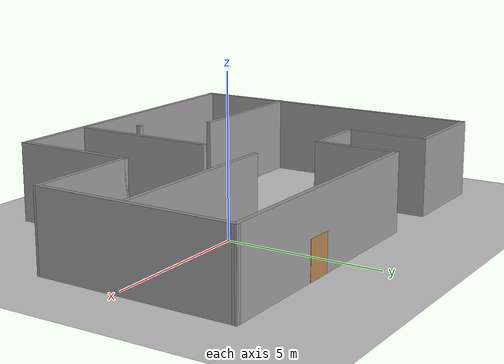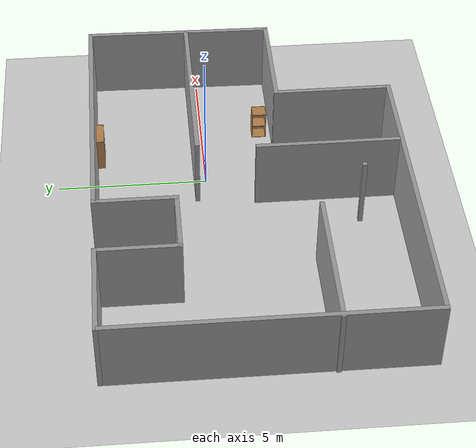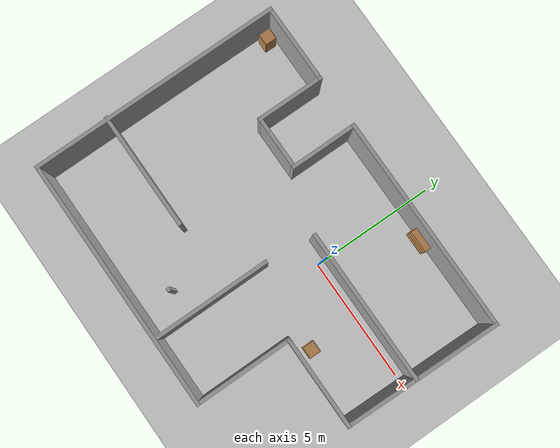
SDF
<sdf version="1.7">
 <world name="default">
  <light name="sun" type="directional">
   <pose>0 0 10 0 -0 0</pose>
   <diffuse>0.8 0.8 0.8 1</diffuse>
   <specular>0.2 0.2 0.2 1</specular>
   <attenuation>
    <range>1000</range>
    <constant>0.9</constant>
    <linear>0.01</linear>
    <quadratic>0.001</quadratic>
   </attenuation>
   <direction>-0.5 0.1 -0.9</direction>
   <spot><inner_angle>0</inner_angle><outer_angle>0</outer_angle><falloff>0</falloff></spot>
  </light>
  <model name="ground_plane">
   <static>1</static>
   <link name="link">
    <collision name="collision">
     <geometry><plane><normal>0 0 1</normal><size>100 100</size></plane></geometry>
     <surface><friction><ode><mu>100</mu><mu2>50</mu2></ode></friction></surface>
    </collision>
    <visual name="visual">
     <cast_shadows>0</cast_shadows>
     <geometry><plane><normal>0 0 1</normal><size>100 100</size></plane></geometry>
     <material>
      <script><uri>file://media/materials/scripts/gazebo.material</uri><name>Gazebo/Grey</name></script>
     </material>
    </visual>
   </link>
  </model>
  <gravity>0 0 -9.8</gravity>
  <magnetic_field>6e-06 2.3e-05 -4.2e-05</magnetic_field>
  <atmosphere type="adiabatic"/>
  <physics type="ode">
   <max_step_size>0.001</max_step_size>
   <real_time_factor>1</real_time_factor>
   <real_time_update_rate>1000</real_time_update_rate>
  </physics>
  <scene><ambient>0.4 0.4 0.4 1</ambient><background>0.7 0.7 0.7 1</background><shadows>1</shadows></scene>
  <audio><device>default</device></audio>
  <spherical_coordinates>
   <surface_model>EARTH_WGS84</surface_model>
   <latitude_deg>0</latitude_deg>
   <longitude_deg>0</longitude_deg>
   <elevation>0</elevation>
   <heading_deg>0</heading_deg>
  </spherical_coordinates>
  <model name="NewMap">
   <pose>-1.64952 -1.32026 0 0 -0 0</pose>
   <link name="Wall_2">
    <collision name="Wall_2_Collision">
     <geometry><box><size>0.15 0.15 2.5</size></box></geometry>
     <pose>0 0 1.25 0 -0 0</pose>
    </collision>
    <visual name="Wall_2_Visual">
     <pose>0 0 1.25 0 -0 0</pose>
     <geometry><box><size>0.15 0.15 2.5</size></box></geometry>
     <material>
      <script><uri>file://media/materials/scripts/gazebo.material</uri><name>Gazebo/Grey</name></script>
      <ambient>1 1 1 1</ambient>
     </material>
     <meta><layer>0</layer></meta>
    </visual>
    <pose>-0.620475 -3.64974 0 0 -0 0</pose>
   </link>
   <link name="Wall_20">
    <collision name="Wall_20_Collision">
     <geometry><box><size>10.25 0.15 2.5</size></box></geometry>
     <pose>0 0 1.25 0 -0 0</pose>
    </collision>
    <visual name="Wall_20_Visual">
     <pose>0 0 1.25 0 -0 0</pose>
     <geometry><box><size>10.25 0.15 2.5</size></box></geometry>
     <material>
      <script><uri>file://media/materials/scripts/gazebo.material</uri><name>Gazebo/Grey</name></script>
      <ambient>1 1 1 1</ambient>
     </material>
     <meta><layer>0</layer></meta>
    </visual>
    <pose>-6.87315 -0.000595 0 0 -0 -1.5708</pose>
   </link>
   <link name="Wall_21">
    <collision name="Wall_21_Collision">
     <geometry><box><size>10.25 0.15 2.5</size></box></geometry>
     <pose>0 0 1.25 0 -0 0</pose>
    </collision>
    <visual name="Wall_21_Visual">
     <pose>0 0 1.25 0 -0 0</pose>
     <geometry><box><size>10.25 0.15 2.5</size></box></geometry>
     <material>
      <script><uri>file://media/materials/scripts/gazebo.material</uri><name>Gazebo/Grey</name></script>
      <ambient>1 1 1 1</ambient>
     </material>
     <meta><layer>0</layer></meta>
    </visual>
    <pose>-1.82315 -5.0506 0 0 -0 0</pose>
   </link>
   <link name="Wall_22">
    <collision name="Wall_22_Collision">
     <geometry><box><size>4 0.15 2.5</size></box></geometry>
     <pose>0 0 1.25 0 -0 0</pose>
    </collision>
    <visual name="Wall_22_Visual">
     <pose>0 0 1.25 0 -0 0</pose>
     <geometry><box><size>4 0.15 2.5</size></box></geometry>
     <material>
      <script><uri>file://media/materials/scripts/gazebo.material</uri><name>Gazebo/Grey</name></script>
      <ambient>1 1 1 1</ambient>
     </material>
     <meta><layer>0</layer></meta>
    </visual>
    <pose>3.22685 -3.1256 0 0 -0 1.5708</pose>
   </link>
   <link name="Wall_23">
    <collision name="Wall_23_Collision">
     <geometry><box><size>3.75 0.15 2.5</size></box></geometry>
     <pose>0 0 1.25 0 -0 0</pose>
    </collision>
    <visual name="Wall_23_Visual">
     <pose>0 0 1.25 0 -0 0</pose>
     <geometry><box><size>3.75 0.15 2.5</size></box></geometry>
     <material>
      <script><uri>file://media/materials/scripts/gazebo.material</uri><name>Gazebo/Grey</name></script>
      <ambient>1 1 1 1</ambient>
     </material>
     <meta><layer>0</layer></meta>
    </visual>
    <pose>5.02685 -1.2006 0 0 -0 0</pose>
   </link>
   <link name="Wall_26">
    <collision name="Wall_26_Collision">
     <geometry><box><size>3.25 0.15 2.5</size></box></geometry>
     <pose>0 0 1.25 0 -0 0</pose>
    </collision>
    <visual name="Wall_26_Visual">
     <pose>0 0 1.25 0 -0 0</pose>
     <geometry><box><size>3.25 0.15 2.5</size></box></geometry>
     <material>
      <script><uri>file://media/materials/scripts/gazebo.material</uri><name>Gazebo/Grey</name></script>
      <ambient>1 1 1 1</ambient>
     </material>
     <meta><layer>0</layer></meta>
    </visual>
    <pose>-5.32315 5.04941 0 0 -0 0</pose>
   </link>
   <link name="Wall_27">
    <collision name="Wall_27_Collision">
     <geometry><box><size>2.75 0.15 2.5</size></box></geometry>
     <pose>0 0 1.25 0 -0 0</pose>
    </collision>
    <visual name="Wall_27_Visual">
     <pose>0 0 1.25 0 -0 0</pose>
     <geometry><box><size>2.75 0.15 2.5</size></box></geometry>
     <material>
      <script><uri>file://media/materials/scripts/gazebo.material</uri><name>Gazebo/Grey</name></script>
      <ambient>1 1 1 1</ambient>
     </material>
     <meta><layer>0</layer></meta>
    </visual>
    <pose>-3.77315 3.7494 0 0 -0 -1.5708</pose>
   </link>
   <link name="Wall_28">
    <collision name="Wall_28_Collision">
     <geometry><box><size>2.25 0.15 2.5</size></box></geometry>
     <pose>0 0 1.25 0 -0 0</pose>
    </collision>
    <visual name="Wall_28_Visual">
     <pose>0 0 1.25 0 -0 0</pose>
     <geometry><box><size>2.25 0.15 2.5</size></box></geometry>
     <material>
      <script><uri>file://media/materials/scripts/gazebo.material</uri><name>Gazebo/Grey</name></script>
      <ambient>1 1 1 1</ambient>
     </material>
     <meta><layer>0</layer></meta>
    </visual>
    <pose>-2.72315 2.44941 0 0 -0 0</pose>
   </link>
   <link name="Wall_29">
    <collision name="Wall_29_Collision">
     <geometry><box><size>2.75 0.15 2.5</size></box></geometry>
     <pose>0 0 1.25 0 -0 0</pose>
    </collision>
    <visual name="Wall_29_Visual">
     <pose>0 0 1.25 0 -0 0</pose>
     <geometry><box><size>2.75 0.15 2.5</size></box></geometry>
     <material>
      <script><uri>file://media/materials/scripts/gazebo.material</uri><name>Gazebo/Grey</name></script>
      <ambient>1 1 1 1</ambient>
     </material>
     <meta><layer>0</layer></meta>
    </visual>
    <pose>-1.67315 3.7494 0 0 -0 1.5708</pose>
   </link>
   <link name="Wall_30">
    <collision name="Wall_30_Collision">
     <geometry><box><size>8.75 0.15 2.5</size></box></geometry>
     <pose>0 0 1.25 0 -0 0</pose>
    </collision>
    <visual name="Wall_30_Visual">
     <pose>0 0 1.25 0 -0 0</pose>
     <geometry><box><size>8.75 0.15 2.5</size></box></geometry>
     <material>
      <script><uri>file://media/materials/scripts/gazebo.material</uri><name>Gazebo/Grey</name></script>
      <ambient>1 1 1 1</ambient>
     </material>
     <meta><layer>0</layer></meta>
    </visual>
    <pose>2.62685 5.04941 0 0 -0 0</pose>
   </link>
   <link name="Wall_31">
    <collision name="Wall_31_Collision">
     <geometry><box><size>6.4008 0.15 2.5</size></box></geometry>
     <pose>0 0 1.25 0 -0 0</pose>
    </collision>
    <visual name="Wall_31_Visual">
     <pose>0 0 1.25 0 -0 0</pose>
     <geometry><box><size>6.4008 0.15 2.5</size></box></geometry>
     <material>
      <script><uri>file://media/materials/scripts/gazebo.material</uri><name>Gazebo/Grey</name></script>
      <ambient>1 1 1 1</ambient>
     </material>
     <meta><layer>0</layer></meta>
    </visual>
    <pose>6.87685 1.9244 0 0 -0 -1.58679</pose>
   </link>
   <link name="Wall_33">
    <collision name="Wall_33_Collision">
     <geometry><box><size>4.75 0.15 2.5</size></box></geometry>
     <pose>0 0 1.25 0 -0 0</pose>
    </collision>
    <visual name="Wall_33_Visual">
     <pose>0 0 1.25 0 -0 0</pose>
     <geometry><box><size>4.75 0.15 2.5</size></box></geometry>
     <material>
      <script><uri>file://media/materials/scripts/gazebo.material</uri><name>Gazebo/Grey</name></script>
      <ambient>1 1 1 1</ambient>
     </material>
     <meta><layer>0</layer></meta>
    </visual>
    <pose>-4.62804 -2.04102 0 0 -0 0</pose>
   </link>
   <link name="Wall_35">
    <collision name="Wall_35_Collision">
     <geometry><box><size>6.25 0.15 2.5</size></box></geometry>
     <pose>0 0 1.25 0 -0 0</pose>
    </collision>
    <visual name="Wall_35_Visual">
     <pose>0 0 1.25 0 -0 0</pose>
     <geometry><box><size>6.25 0.15 2.5</size></box></geometry>
     <material>
      <script><uri>file://media/materials/scripts/gazebo.material</uri><name>Gazebo/Grey</name></script>
      <ambient>1 1 1 1</ambient>
     </material>
     <meta><layer>0</layer></meta>
    </visual>
    <pose>3.81203 1.65275 0 0 -0 3.14159</pose>
   </link>
   <link name="Wall_37">
    <collision name="Wall_37_Collision">
     <geometry><box><size>4.75 0.15 2.5</size></box></geometry>
     <pose>0 0 1.25 0 -0 0</pose>
    </collision>
    <visual name="Wall_37_Visual">
     <pose>0 0 1.25 0 -0 0</pose>
     <geometry><box><size>4.75 0.15 2.5</size></box></geometry>
     <material>
      <script><uri>file://media/materials/scripts/gazebo.material</uri><name>Gazebo/Grey</name></script>
      <ambient>1 1 1 1</ambient>
     </material>
     <meta><layer>0</layer></meta>
    </visual>
    <pose>0.529856 -2.62568 0 0 -0 1.5708</pose>
   </link>
   <static>1</static>
  </model>
  <model name="cabinet">
   <static>1</static>
   <link name="cabinet_bottom_plate">
    <inertial>
     <pose>0 0 -1 0 -0 0</pose>
     <inertia><ixx>2.05</ixx><ixy>0</ixy><ixz>0</ixz><iyy>2.05</iyy><iyz>0</iyz><izz>2.05</izz></inertia>
     <mass>25</mass>
    </inertial>
    <collision name="cabinet_bottom_plate_geom">
     <pose>0 0 0.01 0 -0 0</pose>
     <geometry><box><size>0.45 0.45 0.02</size></box></geometry>
    </collision>
    <visual name="cabinet_bottom_plate_geom_visual">
     <pose>0 0 0.01 0 -0 0</pose>
     <geometry><box><size>0.45 0.45 0.02</size></box></geometry>
     <material>
      <script><uri>file://media/materials/scripts/gazebo.material</uri><name>Gazebo/Wood</name></script>
     </material>
    </visual>
    <collision name="cabinet_bottom_plate_geom_cabinet_back_plate">
     <pose>0.235 0 0.51 0 -0 0</pose>
     <geometry><box><size>0.02 0.45 1.02</size></box></geometry>
    </collision>
    <visual name="cabinet_bottom_plate_geom_cabinet_back_plate_visual">
     <pose>0.235 0 0.51 0 -0 0</pose>
     <geometry><box><size>0.02 0.45 1.02</size></box></geometry>
     <material>
      <script><uri>file://media/materials/scripts/gazebo.material</uri><name>Gazebo/Wood</name></script>
     </material>
    </visual>
    <collision name="cabinet_bottom_plate_geom_cabinet_left_plate">
     <pose>0 0.235 0.51 0 -0 0</pose>
     <geometry><box><size>0.45 0.02 1.02</size></box></geometry>
    </collision>
    <visual name="cabinet_bottom_plate_geom_cabinet_left_plate_visual">
     <pose>0 0.235 0.51 0 -0 0</pose>
     <geometry><box><size>0.45 0.02 1.02</size></box></geometry>
     <material>
      <script><uri>file://media/materials/scripts/gazebo.material</uri><name>Gazebo/Wood</name></script>
     </material>
    </visual>
    <collision name="cabinet_bottom_plate_geom_cabinet_middle_plate">
     <pose>0 0 0.51 0 -0 0</pose>
     <geometry><box><size>0.45 0.45 0.02</size></box></geometry>
    </collision>
    <visual name="cabinet_bottom_plate_geom_cabinet_middle_plate_visual">
     <pose>0 0 0.51 0 -0 0</pose>
     <geometry><box><size>0.45 0.45 0.02</size></box></geometry>
     <material>
      <script><uri>file://media/materials/scripts/gazebo.material</uri><name>Gazebo/Wood</name></script>
     </material>
    </visual>
    <collision name="cabinet_bottom_plate_geom_cabinet_right_plate">
     <pose>0 -0.235 0.51 0 -0 0</pose>
     <geometry><box><size>0.45 0.02 1.02</size></box></geometry>
    </collision>
    <visual name="cabinet_bottom_plate_geom_cabinet_right_plate_visual">
     <pose>0 -0.235 0.51 0 -0 0</pose>
     <geometry><box><size>0.45 0.02 1.02</size></box></geometry>
     <material>
      <script><uri>file://media/materials/scripts/gazebo.material</uri><name>Gazebo/Wood</name></script>
     </material>
    </visual>
    <collision name="cabinet_bottom_plate_geom_cabinet_top_plate">
     <pose>0 0 1.01 0 -0 0</pose>
     <geometry><box><size>0.45 0.45 0.02</size></box></geometry>
    </collision>
    <visual name="cabinet_bottom_plate_geom_cabinet_top_plate_visual">
     <pose>0 0 1.01 0 -0 0</pose>
     <geometry><box><size>0.45 0.45 0.02</size></box></geometry>
     <material>
      <script><uri>file://media/materials/scripts/gazebo.material</uri><name>Gazebo/Wood</name></script>
     </material>
    </visual>
   </link>
   <pose>-8.10826 3.3215 0 0 -0 0</pose>
  </model>
  <model name="bookshelf">
   <static>1</static>
   <link name="link">
    <inertial><mass>1</mass></inertial>
    <collision name="back">
     <pose>0 0.005 0.6 0 -0 0</pose>
     <geometry><box><size>0.9 0.01 1.2</size></box></geometry>
    </collision>
    <visual name="visual1">
     <pose>0 0.005 0.6 0 -0 0</pose>
     <geometry><box><size>0.9 0.01 1.2</size></box></geometry>
     <material>
      <script><uri>file://media/materials/scripts/gazebo.material</uri><name>Gazebo/Wood</name></script>
     </material>
    </visual>
    <collision name="left_side">
     <pose>0.45 -0.195 0.6 0 -0 0</pose>
     <geometry><box><size>0.02 0.4 1.2</size></box></geometry>
    </collision>
    <visual name="visual2">
     <pose>0.45 -0.195 0.6 0 -0 0</pose>
     <geometry><box><size>0.02 0.4 1.2</size></box></geometry>
     <material>
      <script><uri>file://media/materials/scripts/gazebo.material</uri><name>Gazebo/Wood</name></script>
     </material>
    </visual>
    <collision name="right_side">
     <pose>-0.45 -0.195 0.6 0 -0 0</pose>
     <geometry><box><size>0.02 0.4 1.2</size></box></geometry>
    </collision>
    <visual name="visual3">
     <pose>-0.45 -0.195 0.6 0 -0 0</pose>
     <geometry><box><size>0.02 0.4 1.2</size></box></geometry>
     <material>
      <script><uri>file://media/materials/scripts/gazebo.material</uri><name>Gazebo/Wood</name></script>
     </material>
    </visual>
    <collision name="bottom">
     <pose>0 -0.195 0.03 0 -0 0</pose>
     <geometry><box><size>0.88 0.4 0.06</size></box></geometry>
    </collision>
    <visual name="visual4">
     <pose>0 -0.195 0.03 0 -0 0</pose>
     <geometry><box><size>0.88 0.4 0.06</size></box></geometry>
     <material>
      <script><uri>file://media/materials/scripts/gazebo.material</uri><name>Gazebo/Wood</name></script>
     </material>
    </visual>
    <collision name="top">
     <pose>0 -0.195 1.19 0 -0 0</pose>
     <geometry><box><size>0.88 0.4 0.02</size></box></geometry>
    </collision>
    <visual name="visual5">
     <pose>0 -0.195 1.19 0 -0 0</pose>
     <geometry><box><size>0.88 0.4 0.02</size></box></geometry>
     <material>
      <script><uri>file://media/materials/scripts/gazebo.material</uri><name>Gazebo/Wood</name></script>
     </material>
    </visual>
    <collision name="low_shelf">
     <pose>0 -0.195 0.43 0 -0 0</pose>
     <geometry><box><size>0.88 0.4 0.02</size></box></geometry>
    </collision>
    <visual name="visual6">
     <pose>0 -0.195 0.43 0 -0 0</pose>
     <geometry><box><size>0.88 0.4 0.02</size></box></geometry>
     <material>
      <script><uri>file://media/materials/scripts/gazebo.material</uri><name>Gazebo/Wood</name></script>
     </material>
    </visual>
    <collision name="high_shelf">
     <pose>0 -0.195 0.8 0 -0 0</pose>
     <geometry><box><size>0.88 0.4 0.02</size></box></geometry>
    </collision>
    <visual name="visual7">
     <pose>0 -0.195 0.8 0 -0 0</pose>
     <geometry><box><size>0.88 0.4 0.02</size></box></geometry>
     <material>
      <script><uri>file://media/materials/scripts/gazebo.material</uri><name>Gazebo/Wood</name></script>
     </material>
    </visual>
   </link>
   <pose>1.40272 3.80075 0 0 -0 0</pose>
  </model>
  <model name="cabinet_0">
   <static>1</static>
   <link name="cabinet_bottom_plate">
    <inertial>
     <pose>0 0 -1 0 -0 0</pose>
     <inertia><ixx>2.05</ixx><ixy>0</ixy><ixz>0</ixz><iyy>2.05</iyy><iyz>0</iyz><izz>2.05</izz></inertia>
     <mass>25</mass>
    </inertial>
    <collision name="cabinet_bottom_plate_geom">
     <pose>0 0 0.01 0 -0 0</pose>
     <geometry><box><size>0.45 0.45 0.02</size></box></geometry>
    </collision>
    <visual name="cabinet_bottom_plate_geom_visual">
     <pose>0 0 0.01 0 -0 0</pose>
     <geometry><box><size>0.45 0.45 0.02</size></box></geometry>
     <material>
      <script><uri>file://media/materials/scripts/gazebo.material</uri><name>Gazebo/Wood</name></script>
     </material>
    </visual>
    <collision name="cabinet_bottom_plate_geom_cabinet_back_plate">
     <pose>0.235 0 0.51 0 -0 0</pose>
     <geometry><box><size>0.02 0.45 1.02</size></box></geometry>
    </collision>
    <visual name="cabinet_bottom_plate_geom_cabinet_back_plate_visual">
     <pose>0.235 0 0.51 0 -0 0</pose>
     <geometry><box><size>0.02 0.45 1.02</size></box></geometry>
     <material>
      <script><uri>file://media/materials/scripts/gazebo.material</uri><name>Gazebo/Wood</name></script>
     </material>
    </visual>
    <collision name="cabinet_bottom_plate_geom_cabinet_left_plate">
     <pose>0 0.235 0.51 0 -0 0</pose>
     <geometry><box><size>0.45 0.02 1.02</size></box></geometry>
    </collision>
    <visual name="cabinet_bottom_plate_geom_cabinet_left_plate_visual">
     <pose>0 0.235 0.51 0 -0 0</pose>
     <geometry><box><size>0.45 0.02 1.02</size></box></geometry>
     <material>
      <script><uri>file://media/materials/scripts/gazebo.material</uri><name>Gazebo/Wood</name></script>
     </material>
    </visual>
    <collision name="cabinet_bottom_plate_geom_cabinet_middle_plate">
     <pose>0 0 0.51 0 -0 0</pose>
     <geometry><box><size>0.45 0.45 0.02</size></box></geometry>
    </collision>
    <visual name="cabinet_bottom_plate_geom_cabinet_middle_plate_visual">
     <pose>0 0 0.51 0 -0 0</pose>
     <geometry><box><size>0.45 0.45 0.02</size></box></geometry>
     <material>
      <script><uri>file://media/materials/scripts/gazebo.material</uri><name>Gazebo/Wood</name></script>
     </material>
    </visual>
    <collision name="cabinet_bottom_plate_geom_cabinet_right_plate">
     <pose>0 -0.235 0.51 0 -0 0</pose>
     <geometry><box><size>0.45 0.02 1.02</size></box></geometry>
    </collision>
    <visual name="cabinet_bottom_plate_geom_cabinet_right_plate_visual">
     <pose>0 -0.235 0.51 0 -0 0</pose>
     <geometry><box><size>0.45 0.02 1.02</size></box></geometry>
     <material>
      <script><uri>file://media/materials/scripts/gazebo.material</uri><name>Gazebo/Wood</name></script>
     </material>
    </visual>
    <collision name="cabinet_bottom_plate_geom_cabinet_top_plate">
     <pose>0 0 1.01 0 -0 0</pose>
     <geometry><box><size>0.45 0.45 0.02</size></box></geometry>
    </collision>
    <visual name="cabinet_bottom_plate_geom_cabinet_top_plate_visual">
     <pose>0 0 1.01 0 -0 0</pose>
     <geometry><box><size>0.45 0.45 0.02</size></box></geometry>
     <material>
      <script><uri>file://media/materials/scripts/gazebo.material</uri><name>Gazebo/Wood</name></script>
     </material>
    </visual>
   </link>
   <pose>2.37982 -2.03402 0 0 -0 0</pose>
  </model>
 </world>
</sdf>
